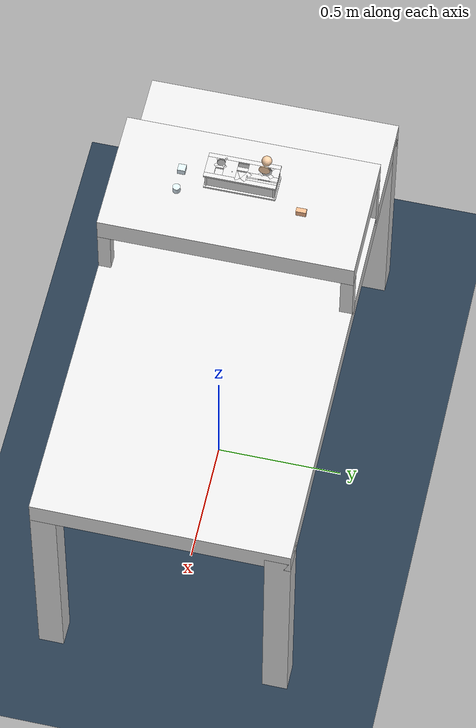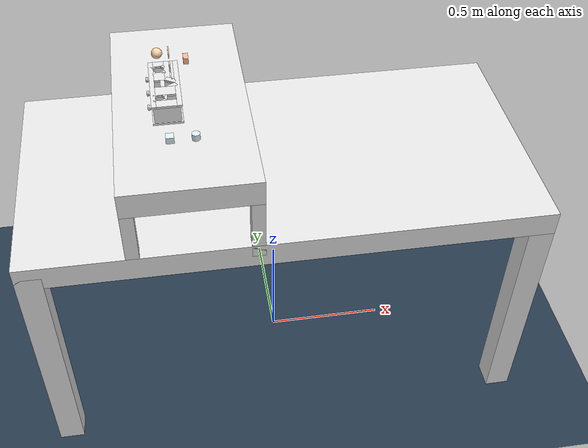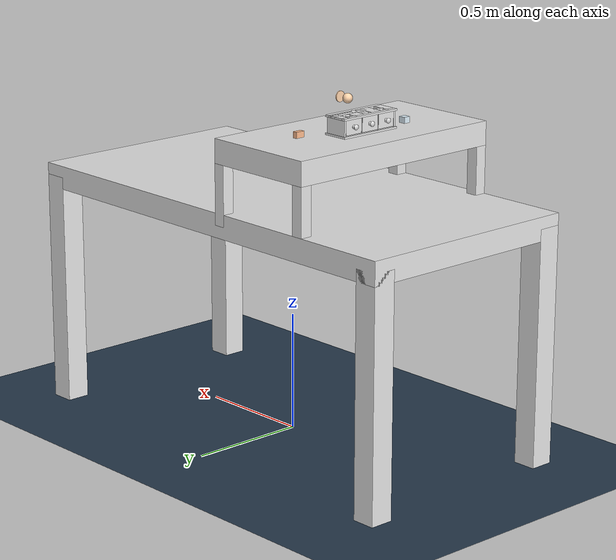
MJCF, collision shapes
<mujoco model="montessori_toys">
  <compiler angle="radian" />
  <size nkey="1" />
  <visual>
    <map stiffness="700" fogstart="1" fogend="15" zfar="40" haze="1" shadowscale="0.5" />
    <rgba haze="0.15 0.25 0.35 1" />
  </visual>
  <default>
    <default class="table_main" />
    <default class="small_table_main" />
    <default class="montessori_box_main">
      <default class="montessori_box_montessori_box_visual">
        <geom contype="0" conaffinity="0" rgba="0.89 0.67 0.57 1" />
      </default>
      <default class="montessori_box_montessori_box_collision">
        <geom group="3" rgba="0.9 0.9 0.9 1" />
      </default>
    </default>
    <default class="montessori_object_1_main">
      <default class="montessori_object_1_montessori_object_1_collision">
        <geom rgba="1 0.83 0.67 1" contype="0" conaffinity="0" />
      </default>
    </default>
    <default class="montessori_object_2_main">
      <default class="montessori_object_2_montessori_object_2_collision">
        <geom rgba="0.99 0.73 0.55 1" contype="0" conaffinity="0" />
      </default>
    </default>
    <default class="montessori_object_3_main">
      <default class="montessori_object_3_montessori_object_3_collision">
        <geom rgba="0.87 0.94 0.98 1" contype="0" conaffinity="0" />
      </default>
    </default>
    <default class="montessori_object_4_main">
      <default class="montessori_object_4_montessori_object_4_collision">
        <geom rgba="1 0.83 0.67 1" contype="0" conaffinity="0" />
      </default>
    </default>
    <default class="montessori_object_5_main">
      <default class="montessori_object_5_montessori_object_5_collision">
        <geom rgba="0.99 0.73 0.55 1" contype="0" conaffinity="0" />
      </default>
    </default>
    <default class="montessori_object_6_main">
      <default class="montessori_object_6_montessori_object_6_collision">
        <geom rgba="0.87 0.94 0.98 1" contype="0" conaffinity="0" />
      </default>
    </default>
  </default>
  <asset>
    <texture type="skybox" builtin="gradient" rgb1="0.3 0.5 0.7" rgb2="0 0 0" width="512" height="3072" />
    <texture type="2d" name="texplane" builtin="checker" mark="cross" rgb1="0.2 0.3 0.4" rgb2="0.1 0.15 0.2" markrgb="0.8 0.8 0.8" width="512" height="512" />
    <material name="matplane" texture="texplane" texuniform="true" texrepeat="10 10" reflectance="0.3" />
    <mesh name="montessori_box_MontessoriBox" file="./montessori_toys/meshes/stl/MontessoriBox.stl" />
    <mesh name="montessori_box_MontessoriDrawer" file="./montessori_toys/meshes/stl/MontessoriDrawer.stl" />
    <mesh name="montessori_box_MontessoriDrawerHandle" file="./montessori_toys/meshes/stl/MontessoriDrawerHandle.stl" />
    <mesh name="montessori_object_2_MontessoriObject_002" file="./montessori_toys/meshes/stl/MontessoriObject_002.stl" />
  </asset>
  <worldbody>
    <geom name="ground" size="0 0 1" type="plane" condim="1" material="matplane" />
    <light pos="0 0 2" dir="0 0 -1" castshadow="false" diffuse="0.4 0.4 0.4" specular="0.1 0.1 0.1" />
    <light pos="0 0 4" dir="0 0 -1" directional="true" diffuse="0.8 0.8 0.8" specular="0.2 0.2 0.2" />
    <body name="table" pos="0 0 1">
      <geom size="1 0.5 0.05" type="box" condim="4" friction="10" mass="6" rgba="0.9 0.9 0.9 1" />
      <geom size="0.05 0.05 0.5" pos="0.95 0.45 -0.5" type="box" mass="1" rgba="0.9 0.9 0.9 1" />
      <geom size="0.05 0.05 0.5" pos="-0.95 0.45 -0.5" type="box" mass="1" rgba="0.9 0.9 0.9 1" />
      <geom size="0.05 0.05 0.5" pos="0.95 -0.45 -0.5" type="box" mass="1" rgba="0.9 0.9 0.9 1" />
      <geom size="0.05 0.05 0.5" pos="-0.95 -0.45 -0.5" type="box" mass="1" rgba="0.9 0.9 0.9 1" />
    </body>
    <body name="small_table" pos="-0.35 0 1">
      <geom name="small_table_geom_1" size="0.25 0.5 0.05" pos="0 0 0.3" type="box" condim="4" friction="10" mass="6" rgba="0.9 0.9 0.9 1" />
      <geom name="small_table_geom_2" size="0.025 0.025 0.125" pos="0.225 0.475 0.125" type="box" mass="1" rgba="0.9 0.9 0.9 1" />
      <geom name="small_table_geom_3" size="0.025 0.025 0.125" pos="0.225 -0.475 0.125" type="box" mass="1" rgba="0.9 0.9 0.9 1" />
      <geom name="small_table_geom_4" size="0.025 0.025 0.125" pos="-0.225 0.475 0.125" type="box" mass="1" rgba="0.9 0.9 0.9 1" />
      <geom name="small_table_geom_5" size="0.025 0.025 0.125" pos="-0.225 -0.475 0.125" type="box" mass="1" rgba="0.9 0.9 0.9 1" />
    </body>
    <body name="montessori_box" pos="-0.4 0 1.39">
      <inertial pos="0.026772 0.00018125 -0.00393274" quat="0.708185 -0.00375276 -0.00476699 0.706001" mass="1.02204" diaginertia="0.00192842 0.00624674 0.00657549" />
      <geom name="MontessoriBox" class="montessori_box_montessori_box_visual" type="mesh" mesh="montessori_box_MontessoriBox" />
      <geom name="UCX_MontessoriBox_001" class="montessori_box_montessori_box_collision" size="0.008 0.021 0.004" pos="-0.0075 0 0.036" type="box" />
      <geom name="UCX_MontessoriBox_002" class="montessori_box_montessori_box_collision" size="0.00875 0.141 0.004" pos="-0.04625 0 0.036" type="box" />
      <geom name="UCX_MontessoriBox_003" class="montessori_box_montessori_box_collision" size="0.049 0.004 0.032" pos="0 0.133 0" type="box" />
      <geom name="UCX_MontessoriBox_004" class="montessori_box_montessori_box_collision" size="0.049 0.004 0.032" pos="0 -0.133 0" type="box" />
      <geom name="UCX_MontessoriBox_005" class="montessori_box_montessori_box_collision" size="0.001 0.129 0.032" pos="0.045 0 0" type="box" />
      <geom name="UCX_MontessoriBox_006" class="montessori_box_montessori_box_collision" size="0.0465 0.0015 0.032" pos="-0.0025 0.0435 0" type="box" />
      <geom name="UCX_MontessoriBox_007" class="montessori_box_montessori_box_collision" size="0.0465 0.0015 0.032" pos="-0.0025 -0.0435 0" type="box" />
      <geom name="UCX_MontessoriBox_008" class="montessori_box_montessori_box_collision" size="0.055 0.141 0.004" pos="0 0 -0.036" type="box" />
      <geom name="UCX_MontessoriBox_009" class="montessori_box_montessori_box_collision" size="0.00925 0.141 0.004" pos="0.04575 0 0.036" type="box" />
      <geom name="UCX_MontessoriBox_010" class="montessori_box_montessori_box_collision" size="0.037 0.019 0.004" pos="-0.0005 -0.122 0.036" type="box" />
      <geom name="UCX_MontessoriBox_011" class="montessori_box_montessori_box_collision" size="0.037 0.025 0.004" pos="-0.0005 -0.046 0.036" type="box" />
      <geom name="UCX_MontessoriBox_012" class="montessori_box_montessori_box_collision" size="0.02 0.025 0.004" pos="-0.0175 0.046 0.036" type="box" />
      <geom name="UCX_MontessoriBox_013" class="montessori_box_montessori_box_collision" size="0.02 0.015 0.004" pos="-0.0175 0.126 0.036" type="box" />
      <geom name="UCX_MontessoriBox_014" class="montessori_box_montessori_box_collision" size="0.021 0.0105 0.004" pos="0.023937 0.019593 0.036" quat="0.965926 0 0 -0.258819" type="box" />
      <geom name="UCX_MontessoriBox_015" class="montessori_box_montessori_box_collision" size="0.005 0.016 0.004" pos="-0.0005 -0.087 0.036" type="box" />
      <geom name="UCX_MontessoriBox_016" class="montessori_box_montessori_box_collision" size="0.0045 0.06 0.004" pos="0.032 0.081 0.036" type="box" />
      <geom name="UCX_MontessoriBox_017" class="montessori_box_montessori_box_collision" size="0.0025 0.023 0.004" pos="0.025 0.044 0.036" type="box" />
      <geom name="UCX_MontessoriBox_018" class="montessori_box_montessori_box_collision" size="0.0025 0.013 0.004" pos="0.025 0.128 0.036" type="box" />
      <geom name="UCX_MontessoriBox_019" class="montessori_box_montessori_box_collision" size="0.0082845 0.0082845 0.004" pos="0.0025 0.071 0.036" quat="0.92388 0 0 0.382683" type="box" />
      <geom name="UCX_MontessoriBox_020" class="montessori_box_montessori_box_collision" size="0.01 0.06 0.004" pos="0.0125 0.081 0.036" type="box" />
      <geom name="UCX_MontessoriBox_021" class="montessori_box_montessori_box_collision" size="0.0082845 0.0082845 0.004" pos="-0.0375 0.071 0.036" quat="0.92388 0 0 0.382683" type="box" />
      <geom name="UCX_MontessoriBox_022" class="montessori_box_montessori_box_collision" size="0.0082845 0.0082845 0.004" pos="-0.0375 0.111 0.036" quat="0.92388 0 0 0.382683" type="box" />
      <geom name="UCX_MontessoriBox_023" class="montessori_box_montessori_box_collision" size="0.0082845 0.0082845 0.004" pos="0.0025 0.111 0.036" quat="0.92388 0 0 0.382683" type="box" />
      <geom name="UCX_MontessoriBox_024" class="montessori_box_montessori_box_collision" size="0.021 0.0105 0.004" pos="0.023937 -0.019593 0.036" quat="0.965926 0 0 0.258819" type="box" />
      <geom name="UCX_MontessoriBox_025" class="montessori_box_montessori_box_collision" size="0.0066275 0.0066275 0.004" pos="-0.0375 -0.071 0.036" quat="0.92388 0 0 0.382683" type="box" />
      <geom name="UCX_MontessoriBox_026" class="montessori_box_montessori_box_collision" size="0.0066275 0.0066275 0.004" pos="-0.0055 -0.071 0.036" quat="0.92388 0 0 0.382683" type="box" />
      <geom name="UCX_MontessoriBox_027" class="montessori_box_montessori_box_collision" size="0.0066275 0.0066275 0.004" pos="-0.0055 -0.103 0.036" quat="0.92388 0 0 0.382683" type="box" />
      <geom name="UCX_MontessoriBox_028" class="montessori_box_montessori_box_collision" size="0.0066275 0.0066275 0.004" pos="-0.0375 -0.103 0.036" quat="0.92388 0 0 0.382683" type="box" />

      <body name="montessori_hole_1" pos="0.025 0.091 0.04" />
      <body name="montessori_hole_2" pos="0.0185 0 0.04" />
      <body name="montessori_hole_3" pos="0.0205 -0.087 0.04" />
      <body name="montessori_hole_4" pos="-0.0175 0.091 0.04" />
      <body name="montessori_hole_5" pos="-0.0265 0 0.04" />
      <body name="montessori_hole_6" pos="-0.0215 -0.087 0.04" />

      <body name="montessori_drawer_1" pos="-0.003 0.087 0">
        <inertial pos="0.0257486 5.70399e-08 -0.00258182" quat="0.999873 -8.21031e-09 0.0159586 -1.63374e-08" mass="0.132188" diaginertia="0.000164339 0.000202005 0.000267194" />
        <joint name="montessori_drawer_1_joint" pos="0 0 0" axis="-1 0 0" type="slide" range="0 0.1" damping="1" />
        <geom name="MontessoriDrawer1" class="montessori_box_montessori_box_visual" type="mesh" rgba="1 0.83 0.67 1" mesh="montessori_box_MontessoriDrawer" />
        <geom name="UCX_MontessoriDrawer1_001" class="montessori_box_montessori_box_collision" size="0.046 0.041 0.001" pos="0 0 -0.03" type="box" />
        <geom name="UCX_MontessoriDrawer1_002" class="montessori_box_montessori_box_collision" size="0.004 0.041 0.03" pos="-0.042 0 0.001" type="box" />
        <geom name="UCX_MontessoriDrawer1_003" class="montessori_box_montessori_box_collision" size="0.042 0.0025 0.03" pos="0.004 0.0385 0.001" type="box" />
        <geom name="UCX_MontessoriDrawer1_004" class="montessori_box_montessori_box_collision" size="0.042 0.0025 0.03" pos="0.004 -0.0385 0.001" type="box" />
        <geom name="UCX_MontessoriDrawer1_005" class="montessori_box_montessori_box_collision" size="0.0025 0.036 0.03" pos="0.0435 0 0.001" type="box" />
        <body name="montessori_drawer_1_handle" pos="-0.061 0 0.001">
          <inertial pos="0.00391558 7.50302e-09 -7.7999e-11" quat="0.707107 -0.707107 -4.64617e-07 4.87344e-07" mass="0.00573975" diaginertia="2.26772e-07 3.54304e-07 3.54724e-07" />
          <geom name="MontessoriDrawer1Handle" class="montessori_box_montessori_box_visual" type="mesh" mesh="montessori_box_MontessoriDrawerHandle" />
          <geom name="UCX_MontessoriDrawer1Handle_001" class="montessori_box_montessori_box_collision" size="0.008 0.0075" pos="0.0075 0 0" quat="0.707107 0 0.707107 0" type="cylinder" />
          <geom name="UCX_MontessoriDrawer1Handle_002" class="montessori_box_montessori_box_collision" size="0.005 0.011 0.011" type="ellipsoid" />
        </body>
      </body>
      <body name="montessori_drawer_2" pos="-0.003 0 0">
        <inertial pos="0.0257486 5.70399e-08 -0.00258182" quat="0.999873 -8.21031e-09 0.0159586 -1.63374e-08" mass="0.132188" diaginertia="0.000164339 0.000202005 0.000267194" />
        <joint name="montessori_drawer_2_joint" pos="0 0 0" axis="-1 0 0" type="slide" range="0 0.1" damping="1" />
        <geom name="MontessoriDrawer2" class="montessori_box_montessori_box_visual" type="mesh" rgba="0.99 0.73 0.55 1" mesh="montessori_box_MontessoriDrawer" />
        <geom name="UCX_MontessoriDrawer2_001" class="montessori_box_montessori_box_collision" size="0.046 0.041 0.001" pos="0 0 -0.03" type="box" />
        <geom name="UCX_MontessoriDrawer2_002" class="montessori_box_montessori_box_collision" size="0.004 0.041 0.03" pos="-0.042 0 0.001" type="box" />
        <geom name="UCX_MontessoriDrawer2_003" class="montessori_box_montessori_box_collision" size="0.042 0.0025 0.03" pos="0.004 0.0385 0.001" type="box" />
        <geom name="UCX_MontessoriDrawer2_004" class="montessori_box_montessori_box_collision" size="0.042 0.0025 0.03" pos="0.004 -0.0385 0.001" type="box" />
        <geom name="UCX_MontessoriDrawer2_005" class="montessori_box_montessori_box_collision" size="0.0025 0.036 0.03" pos="0.0435 0 0.001" type="box" />
        <body name="montessori_drawer_2_handle" pos="-0.061 0 0.001">
          <inertial pos="0.00391558 7.50302e-09 -7.7999e-11" quat="0.707107 -0.707107 -4.64617e-07 4.87344e-07" mass="0.00573975" diaginertia="2.26772e-07 3.54304e-07 3.54724e-07" />
          <geom name="MontessoriDrawer2Handle" class="montessori_box_montessori_box_visual" type="mesh" mesh="montessori_box_MontessoriDrawerHandle" />
          <geom name="UCX_MontessoriDrawer2Handle_001" class="montessori_box_montessori_box_collision" size="0.008 0.0075" pos="0.0075 0 0" quat="0.707107 0 0.707107 0" type="cylinder" />
          <geom name="UCX_MontessoriDrawer2Handle_002" class="montessori_box_montessori_box_collision" size="0.005 0.011 0.011" type="ellipsoid" />
        </body>
      </body>
      <body name="montessori_drawer_3" pos="-0.003 -0.087 0">
        <inertial pos="0.0257486 5.70399e-08 -0.00258182" quat="0.999873 -8.21031e-09 0.0159586 -1.63374e-08" mass="0.132188" diaginertia="0.000164339 0.000202005 0.000267194" />
        <joint name="montessori_drawer_3_joint" pos="0 0 0" axis="-1 0 0" type="slide" range="0 0.1" damping="1" />
        <geom name="MontessoriDrawer3" class="montessori_box_montessori_box_visual" type="mesh" rgba="0.87 0.94 0.98 1" mesh="montessori_box_MontessoriDrawer" />
        <geom name="UCX_MontessoriDrawer3_001" class="montessori_box_montessori_box_collision" size="0.046 0.041 0.001" pos="0 0 -0.03" type="box" />
        <geom name="UCX_MontessoriDrawer3_002" class="montessori_box_montessori_box_collision" size="0.004 0.041 0.03" pos="-0.042 0 0.001" type="box" />
        <geom name="UCX_MontessoriDrawer3_003" class="montessori_box_montessori_box_collision" size="0.042 0.0025 0.03" pos="0.004 0.0385 0.001" type="box" />
        <geom name="UCX_MontessoriDrawer3_004" class="montessori_box_montessori_box_collision" size="0.042 0.0025 0.03" pos="0.004 -0.0385 0.001" type="box" />
        <geom name="UCX_MontessoriDrawer3_005" class="montessori_box_montessori_box_collision" size="0.0025 0.036 0.03" pos="0.0435 0 0.001" type="box" />
        <body name="montessori_drawer_3_handle" pos="-0.061 0 0.001">
          <inertial pos="0.00391558 7.50302e-09 -7.7999e-11" quat="0.707107 -0.707107 -4.64617e-07 4.87344e-07" mass="0.00573975" diaginertia="2.26772e-07 3.54304e-07 3.54724e-07" />
          <geom name="MontessoriDrawer3Handle" class="montessori_box_montessori_box_visual" type="mesh" mesh="montessori_box_MontessoriDrawerHandle" />
          <geom name="UCX_MontessoriDrawer3Handle_001" class="montessori_box_montessori_box_collision" size="0.008 0.0075" pos="0.0075 0 0" quat="0.707107 0 0.707107 0" type="cylinder" />
          <geom name="UCX_MontessoriDrawer3Handle_002" class="montessori_box_montessori_box_collision" size="0.005 0.011 0.011" type="ellipsoid" />
        </body>
      </body>
    </body>
    <body name="montessori_object_1" pos="-0.375 0.091 1.5" quat="0.707107 0 0.707107 0">
      <inertial pos="0 0 0" mass="0.00411518" diaginertia="2.38973e-07 2.38973e-07 4.53745e-07" />
      <joint type="free" limited="false" actuatorfrclimited="false" />
      <geom name="MontessoriObject1" class="montessori_object_1_montessori_object_1_collision" size="0.022 0.002" type="cylinder" />
    </body>
    <body name="montessori_object_2" pos="-0.4015 0.25 1.36">
      <inertial pos="0 0 0" mass="0.0113441" diaginertia="1.25081e-06 1.25081e-06 8.33876e-07" />
      <joint type="free" limited="false" actuatorfrclimited="false" />
      <geom name="MontessoriObject2" class="montessori_object_2_montessori_object_2_collision" type="mesh" mesh="montessori_object_2_MontessoriObject_002" />
    </body>
    <body name="montessori_object_3" pos="-0.4015 -0.237 1.36">
      <inertial pos="0 0 0" mass="0.00776239" diaginertia="5.07195e-07 5.07195e-07 5.07195e-07" />
      <joint type="free" limited="false" actuatorfrclimited="false" />
      <geom name="MontessoriObject3" class="montessori_object_3_montessori_object_3_collision" size="0.015 0.015 0.015" type="box" />
    </body>
    <body name="montessori_object_4" pos="-0.4175 0.091 1.5" quat="0.707107 0 0.707107 0">
      <inertial pos="0 0 0" mass="0.0137173" diaginertia="1.20999e-06 1.20999e-06 1.20999e-06" />
      <joint type="free" limited="false" actuatorfrclimited="false" />
      <geom name="MontessoriObject4" class="montessori_object_4_montessori_object_4_collision" size="0.02" />
    </body>
    <body name="montessori_object_5" pos="-0.3095 0.25 1.36">
      <inertial pos="0 0 0" mass="0.00873269" diaginertia="1.28384e-06 7.13243e-07 7.13243e-07" />
      <joint type="free" limited="false" actuatorfrclimited="false" />
      <geom name="MontessoriObject5" class="montessori_object_5_montessori_object_5_collision" size="0.01 0.02 0.015" type="box" />
    </body>
    <body name="montessori_object_6" pos="-0.3095 -0.237 1.36">
      <inertial pos="0 0 0" mass="0.00609657" diaginertia="3.48556e-07 3.48556e-07 2.98762e-07" />
      <joint type="free" limited="false" actuatorfrclimited="false" />
      <geom name="MontessoriObject6" class="montessori_object_6_montessori_object_6_collision" size="0.015 0.015" type="cylinder" />
    </body>
    </worldbody>
  <keyframe>
    <key name="home" />
  </keyframe>
</mujoco>
